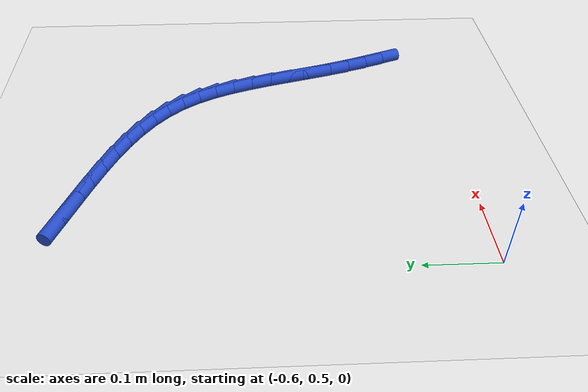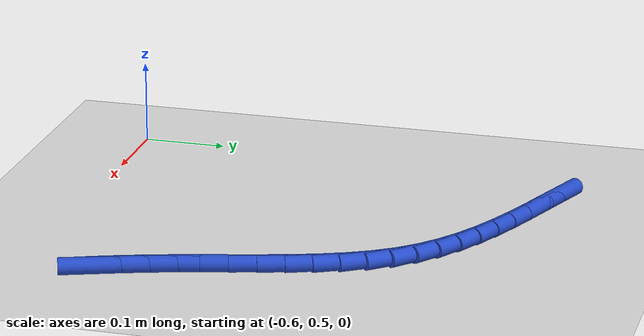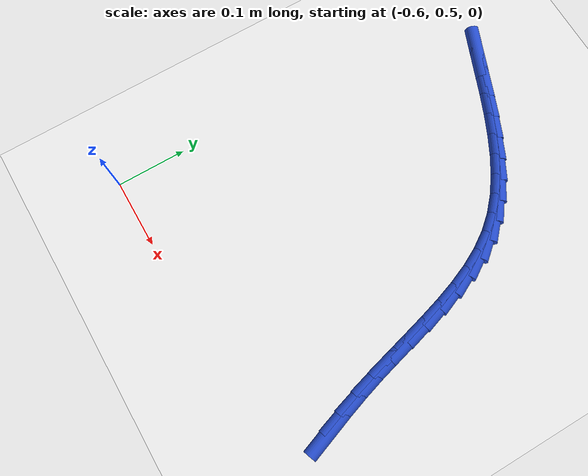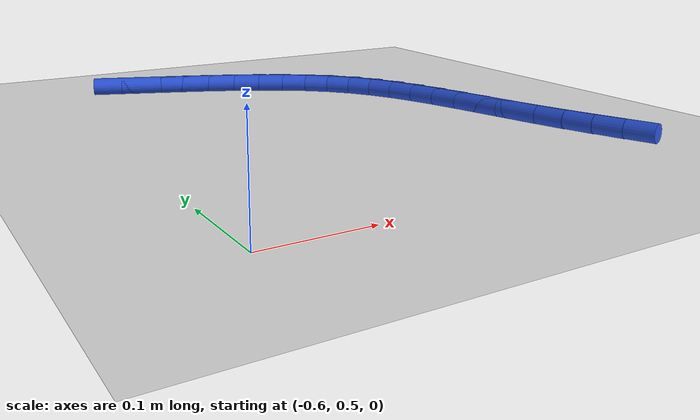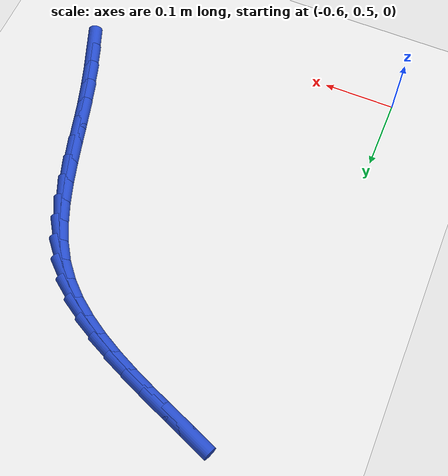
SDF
<sdf version="1.6">
 <world name="default">
  <model name="ground_plane">
   <static>1</static>
   <link name="link">
    <collision name="collision">
     <geometry><plane><normal>0 0 1</normal><size>100 100</size></plane></geometry>
     <surface><friction><ode><mu>100</mu><mu2>50</mu2></ode></friction></surface>
    </collision>
    <visual name="visual">
     <cast_shadows>0</cast_shadows>
     <geometry><plane><normal>0 0 1</normal><size>100 100</size></plane></geometry>
     <material>
      <script><uri>file://media/materials/scripts/gazebo.material</uri><name>Gazebo/WhiteGlow</name></script>
     </material>
    </visual>
   </link>
  </model>
  <model name="line">
   <link name="link_20">
    <pose>-0.1622664671678551 0.5829509112122796 0.01 0 1.57 -1.2209862667133176</pose>
    <collision name="collision">
     <geometry><cylinder><radius>0.01</radius><length>0.08</length></cylinder></geometry>
    </collision>
    <visual name="visual">
     <material>
      <script><name>Gazebo/Blue</name><uri>file://media/materials/scripts/gazebo.material</uri></script>
     </material>
     <geometry><cylinder><radius>0.01</radius><length>0.08</length></cylinder></geometry>
    </visual>
   </link>
   <link name="link_21">
    <pose>-0.17297699676088907 0.6123098483290267 0.01 0 1.57 -1.2462317444198887</pose>
    <collision name="collision">
     <geometry><cylinder><radius>0.01</radius><length>0.08</length></cylinder></geometry>
    </collision>
    <visual name="visual">
     <material>
      <script><name>Gazebo/Blue</name><uri>file://media/materials/scripts/gazebo.material</uri></script>
     </material>
     <geometry><cylinder><radius>0.01</radius><length>0.08</length></cylinder></geometry>
    </visual>
   </link>
   <link name="link_22">
    <pose>-0.18301661037090433 0.6421485359604955 0.01 0 1.57 -1.2757020626371696</pose>
    <collision name="collision">
     <geometry><cylinder><radius>0.01</radius><length>0.08</length></cylinder></geometry>
    </collision>
    <visual name="visual">
     <material>
      <script><name>Gazebo/Blue</name><uri>file://media/materials/scripts/gazebo.material</uri></script>
     </material>
     <geometry><cylinder><radius>0.01</radius><length>0.08</length></cylinder></geometry>
    </visual>
   </link>
   <link name="link_23">
    <pose>-0.19225311509002324 0.6725348547015699 0.01 0 1.57 -1.3028874422926053</pose>
    <collision name="collision">
     <geometry><cylinder><radius>0.01</radius><length>0.08</length></cylinder></geometry>
    </collision>
    <visual name="visual">
     <material>
      <script><name>Gazebo/Blue</name><uri>file://media/materials/scripts/gazebo.material</uri></script>
     </material>
     <geometry><cylinder><radius>0.01</radius><length>0.08</length></cylinder></geometry>
    </visual>
   </link>
   <link name="link_24">
    <pose>-0.20072818118188515 0.7034084957517882 0.01 0 1.57 -1.3145975768397777</pose>
    <collision name="collision">
     <geometry><cylinder><radius>0.01</radius><length>0.08</length></cylinder></geometry>
    </collision>
    <visual name="visual">
     <material>
      <script><name>Gazebo/Blue</name><uri>file://media/materials/scripts/gazebo.material</uri></script>
     </material>
     <geometry><cylinder><radius>0.01</radius><length>0.08</length></cylinder></geometry>
    </visual>
   </link>
   <link name="link_25">
    <pose>-0.20885567091452198 0.7344347329767632 0.01 0 1.57 -1.3094022620440617</pose>
    <collision name="collision">
     <geometry><cylinder><radius>0.01</radius><length>0.08</length></cylinder></geometry>
    </collision>
    <visual name="visual">
     <material>
      <script><name>Gazebo/Blue</name><uri>file://media/materials/scripts/gazebo.material</uri></script>
     </material>
     <geometry><cylinder><radius>0.01</radius><length>0.08</length></cylinder></geometry>
    </visual>
   </link>
   <link name="link_26">
    <pose>-0.21709745705123953 0.7652434420821306 0.01 0 1.57 -1.286896083961144</pose>
    <collision name="collision">
     <geometry><cylinder><radius>0.01</radius><length>0.08</length></cylinder></geometry>
    </collision>
    <visual name="visual">
     <material>
      <script><name>Gazebo/Blue</name><uri>file://media/materials/scripts/gazebo.material</uri></script>
     </material>
     <geometry><cylinder><radius>0.01</radius><length>0.08</length></cylinder></geometry>
    </visual>
   </link>
   <link name="link_27">
    <pose>-0.22591541235534365 0.7954644987735261 0.01 0 1.57 -1.2459252017623088</pose>
    <collision name="collision">
     <geometry><cylinder><radius>0.01</radius><length>0.08</length></cylinder></geometry>
    </collision>
    <visual name="visual">
     <material>
      <script><name>Gazebo/Blue</name><uri>file://media/materials/scripts/gazebo.material</uri></script>
     </material>
     <geometry><cylinder><radius>0.01</radius><length>0.08</length></cylinder></geometry>
    </visual>
   </link>
   <link name="link_28">
    <pose>-0.23577140959014015 0.824727778756586 0.01 0 1.57 -1.1846935498686706</pose>
    <collision name="collision">
     <geometry><cylinder><radius>0.01</radius><length>0.08</length></cylinder></geometry>
    </collision>
    <visual name="visual">
     <material>
      <script><name>Gazebo/Blue</name><uri>file://media/materials/scripts/gazebo.material</uri></script>
     </material>
     <geometry><cylinder><radius>0.01</radius><length>0.08</length></cylinder></geometry>
    </visual>
   </link>
   <link name="link_29">
    <pose>-0.247127321518935 0.8526631577369461 0.01 0 1.57 -1.1010987759824464</pose>
    <collision name="collision">
     <geometry><cylinder><radius>0.01</radius><length>0.08</length></cylinder></geometry>
    </collision>
    <visual name="visual">
     <material>
      <script><name>Gazebo/Blue</name><uri>file://media/materials/scripts/gazebo.material</uri></script>
     </material>
     <geometry><cylinder><radius>0.01</radius><length>0.08</length></cylinder></geometry>
    </visual>
   </link>
   <link name="link_30">
    <pose>-0.2604450209050338 0.8789005114202417 0.01 0 1.57 -0.993509014747664</pose>
    <collision name="collision">
     <geometry><cylinder><radius>0.01</radius><length>0.08</length></cylinder></geometry>
    </collision>
    <visual name="visual">
     <material>
      <script><name>Gazebo/Blue</name><uri>file://media/materials/scripts/gazebo.material</uri></script>
     </material>
     <geometry><cylinder><radius>0.01</radius><length>0.08</length></cylinder></geometry>
    </visual>
   </link>
   <link name="link_31">
    <pose>-0.27618638051174255 0.9030697155121088 0.01 0 1.57 -0.8647516929594672</pose>
    <collision name="collision">
     <geometry><cylinder><radius>0.01</radius><length>0.08</length></cylinder></geometry>
    </collision>
    <visual name="visual">
     <material>
      <script><name>Gazebo/Blue</name><uri>file://media/materials/scripts/gazebo.material</uri></script>
     </material>
     <geometry><cylinder><radius>0.01</radius><length>0.08</length></cylinder></geometry>
    </visual>
   </link>
   <link name="link_32">
    <pose>-0.2947563008786647 0.9248481584157575 0.01 0 1.57 -0.7406093928511145</pose>
    <collision name="collision">
     <geometry><cylinder><radius>0.01</radius><length>0.08</length></cylinder></geometry>
    </collision>
    <visual name="visual">
     <material>
      <script><name>Gazebo/Blue</name><uri>file://media/materials/scripts/gazebo.material</uri></script>
     </material>
     <geometry><cylinder><radius>0.01</radius><length>0.08</length></cylinder></geometry>
    </visual>
   </link>
   <link name="link_33">
    <pose>-0.3160633077837087 0.9443271864669287 0.01 0 1.57 -0.6356681920507704</pose>
    <collision name="collision">
     <geometry><cylinder><radius>0.01</radius><length>0.08</length></cylinder></geometry>
    </collision>
    <visual name="visual">
     <material>
      <script><name>Gazebo/Blue</name><uri>file://media/materials/scripts/gazebo.material</uri></script>
     </material>
     <geometry><cylinder><radius>0.01</radius><length>0.08</length></cylinder></geometry>
    </visual>
   </link>
   <link name="link_34">
    <pose>-0.3397601324169409 0.9618114690929219 0.01 0 1.57 -0.5504610401595924</pose>
    <collision name="collision">
     <geometry><cylinder><radius>0.01</radius><length>0.08</length></cylinder></geometry>
    </collision>
    <visual name="visual">
     <material>
      <script><name>Gazebo/Blue</name><uri>file://media/materials/scripts/gazebo.material</uri></script>
     </material>
     <geometry><cylinder><radius>0.01</radius><length>0.08</length></cylinder></geometry>
    </visual>
   </link>
   <link name="link_35">
    <pose>-0.3654973855572271 0.977607444064442 0.01 0 1.57 -0.4838542391473702</pose>
    <collision name="collision">
     <geometry><cylinder><radius>0.01</radius><length>0.08</length></cylinder></geometry>
    </collision>
    <visual name="visual">
     <material>
      <script><name>Gazebo/Blue</name><uri>file://media/materials/scripts/gazebo.material</uri></script>
     </material>
     <geometry><cylinder><radius>0.01</radius><length>0.08</length></cylinder></geometry>
    </visual>
   </link>
   <link name="link_36">
    <pose>-0.39292567798343325 0.992021549152194 0.01 0 1.57 -0.4341324930475054</pose>
    <collision name="collision">
     <geometry><cylinder><radius>0.01</radius><length>0.08</length></cylinder></geometry>
    </collision>
    <visual name="visual">
     <material>
      <script><name>Gazebo/Blue</name><uri>file://media/materials/scripts/gazebo.material</uri></script>
     </material>
     <geometry><cylinder><radius>0.01</radius><length>0.08</length></cylinder></geometry>
    </visual>
   </link>
   <link name="link_37">
    <pose>-0.42169562047442494 1.0053602221268827 0.01 0 1.57 -0.3996128723988343</pose>
    <collision name="collision">
     <geometry><cylinder><radius>0.01</radius><length>0.08</length></cylinder></geometry>
    </collision>
    <visual name="visual">
     <material>
      <script><name>Gazebo/Blue</name><uri>file://media/materials/scripts/gazebo.material</uri></script>
     </material>
     <geometry><cylinder><radius>0.01</radius><length>0.08</length></cylinder></geometry>
    </visual>
   </link>
   <link name="link_38">
    <pose>-0.45145782380906857 1.0179299007592137 0.01 0 1.57 -0.37894861506903343</pose>
    <collision name="collision">
     <geometry><cylinder><radius>0.01</radius><length>0.08</length></cylinder></geometry>
    </collision>
    <visual name="visual">
     <material>
      <script><name>Gazebo/Blue</name><uri>file://media/materials/scripts/gazebo.material</uri></script>
     </material>
     <geometry><cylinder><radius>0.01</radius><length>0.08</length></cylinder></geometry>
    </visual>
   </link>
   <link name="link_39">
    <pose>-0.4818628987662297 1.0300370228198916 0.01 0 1.57 -0.37124989619854165</pose>
    <collision name="collision">
     <geometry><cylinder><radius>0.01</radius><length>0.08</length></cylinder></geometry>
    </collision>
    <visual name="visual">
     <material>
      <script><name>Gazebo/Blue</name><uri>file://media/materials/scripts/gazebo.material</uri></script>
     </material>
     <geometry><cylinder><radius>0.01</radius><length>0.08</length></cylinder></geometry>
    </visual>
   </link>
   <link name="link_40">
    <pose>-0.5125614561247741 1.0419880260796215 0.01 0 1.57 -0.37611734015171594</pose>
    <collision name="collision">
     <geometry><cylinder><radius>0.01</radius><length>0.08</length></cylinder></geometry>
    </collision>
    <visual name="visual">
     <material>
      <script><name>Gazebo/Blue</name><uri>file://media/materials/scripts/gazebo.material</uri></script>
     </material>
     <geometry><cylinder><radius>0.01</radius><length>0.08</length></cylinder></geometry>
    </visual>
   </link>
  </model>
 </world>
</sdf>
